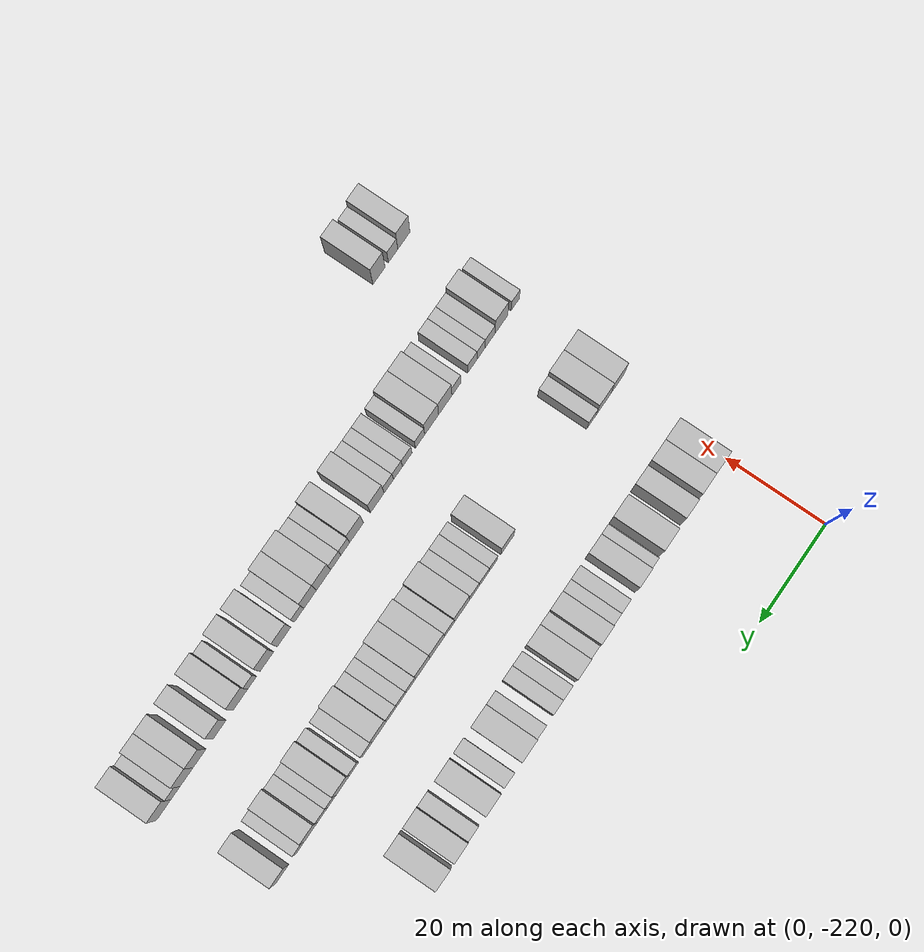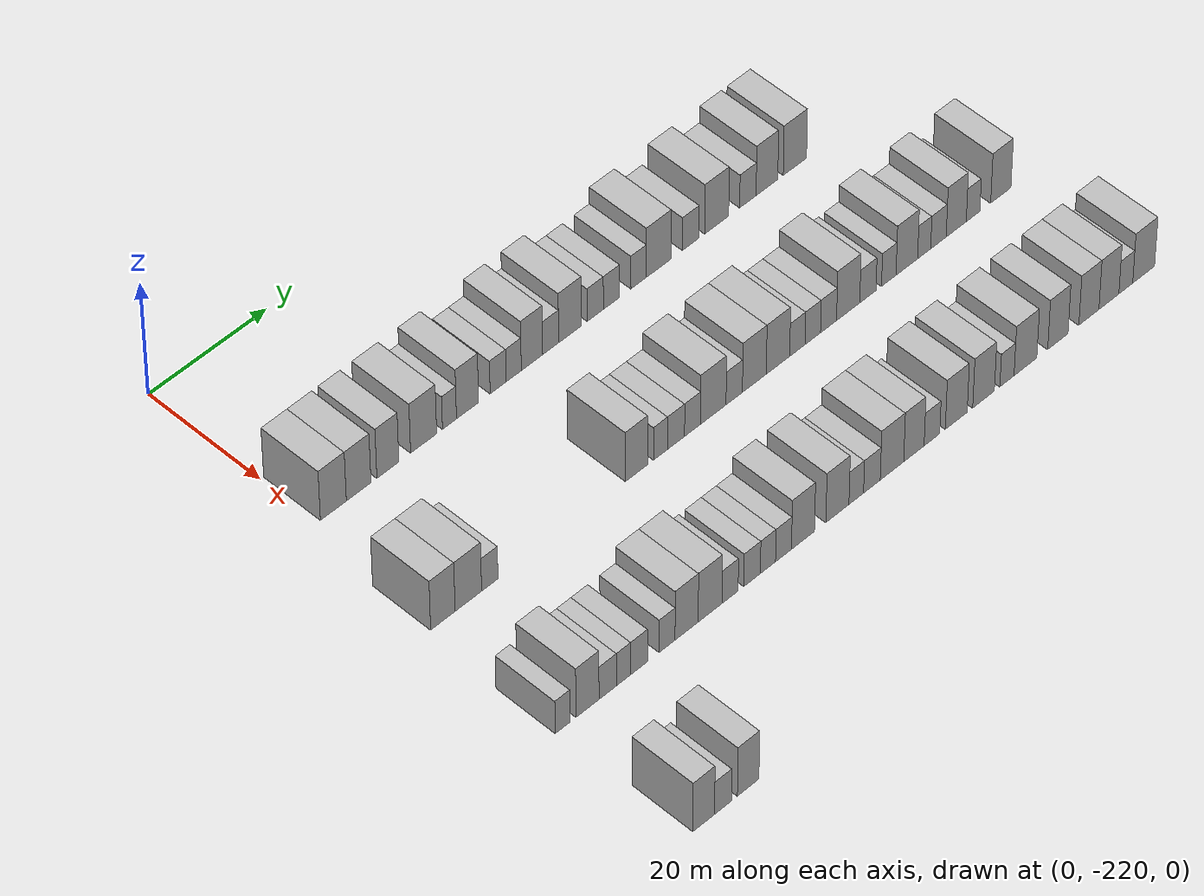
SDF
<sdf version="1.6">
 <world name="default">
  <model name="building_36">
   <static>1</static>
   <pose>25.0000 -217.2489 0 0.000000 0.000000 0.000000</pose>
   <link name="link">
    <pose>0 0 4.50 0 0 0</pose>
    <collision name="collision"><geometry><box><size>10.0000 4.3732 9.0000</size></box></geometry></collision>
    <visual name="visual">
     <cast_shadows>0</cast_shadows>
     <geometry><box><size>10.0000 4.3732 9.0000</size></box></geometry>
     <material>
      <script>
       <uri>model://HANNAS_wall/materials/scripts</uri>
       <uri>model://HANNAS_wall/materials/textures</uri>
       <name>vrc/HANNAS_wall</name>
      </script>
     </material>
    </visual>
   </link>
  </model>
  <model name="building_37">
   <static>1</static>
   <pose>25.0000 -212.9820 0 0.000000 0.000000 0.000000</pose>
   <link name="link">
    <pose>0 0 4.50 0 0 0</pose>
    <collision name="collision"><geometry><box><size>10.0000 4.1607 9.0000</size></box></geometry></collision>
    <visual name="visual">
     <cast_shadows>0</cast_shadows>
     <geometry><box><size>10.0000 4.1607 9.0000</size></box></geometry>
     <material>
      <script>
       <uri>model://HANNAS_wall/materials/scripts</uri>
       <uri>model://HANNAS_wall/materials/textures</uri>
       <name>vrc/HANNAS_wall</name>
      </script>
     </material>
    </visual>
   </link>
  </model>
  <model name="building_38">
   <static>1</static>
   <pose>25.0000 -208.0290 0 0.000000 0.000000 0.000000</pose>
   <link name="link">
    <pose>0 0 4.50 0 0 0</pose>
    <collision name="collision"><geometry><box><size>10.0000 3.7453 9.0000</size></box></geometry></collision>
    <visual name="visual">
     <cast_shadows>0</cast_shadows>
     <geometry><box><size>10.0000 3.7453 9.0000</size></box></geometry>
     <material>
      <script>
       <uri>model://HANNAS_wall/materials/scripts</uri>
       <uri>model://HANNAS_wall/materials/textures</uri>
       <name>vrc/HANNAS_wall</name>
      </script>
     </material>
    </visual>
   </link>
  </model>
  <model name="building_39">
   <static>1</static>
   <pose>25.0000 -201.9263 0 0.000000 0.000000 0.000000</pose>
   <link name="link">
    <pose>0 0 4.50 0 0 0</pose>
    <collision name="collision"><geometry><box><size>10.0000 4.4602 9.0000</size></box></geometry></collision>
    <visual name="visual">
     <cast_shadows>0</cast_shadows>
     <geometry><box><size>10.0000 4.4602 9.0000</size></box></geometry>
     <material>
      <script>
       <uri>model://HANNAS_wall/materials/scripts</uri>
       <uri>model://HANNAS_wall/materials/textures</uri>
       <name>vrc/HANNAS_wall</name>
      </script>
     </material>
    </visual>
   </link>
  </model>
  <model name="building_40">
   <static>1</static>
   <pose>25.0000 -197.4932 0 0.000000 0.000000 0.000000</pose>
   <link name="link">
    <pose>0 0 3.00 0 0 0</pose>
    <collision name="collision"><geometry><box><size>10.0000 2.4059 6.0000</size></box></geometry></collision>
    <visual name="visual">
     <cast_shadows>0</cast_shadows>
     <geometry><box><size>10.0000 2.4059 6.0000</size></box></geometry>
     <material>
      <script>
       <uri>model://HANNAS_wall/materials/scripts</uri>
       <uri>model://HANNAS_wall/materials/textures</uri>
       <name>vrc/HANNAS_wall</name>
      </script>
     </material>
    </visual>
   </link>
  </model>
  <model name="building_41">
   <static>1</static>
   <pose>25.0000 -194.3835 0 0.000000 0.000000 0.000000</pose>
   <link name="link">
    <pose>0 0 4.50 0 0 0</pose>
    <collision name="collision"><geometry><box><size>10.0000 3.8135 9.0000</size></box></geometry></collision>
    <visual name="visual">
     <cast_shadows>0</cast_shadows>
     <geometry><box><size>10.0000 3.8135 9.0000</size></box></geometry>
     <material>
      <script>
       <uri>model://HANNAS_wall/materials/scripts</uri>
       <uri>model://HANNAS_wall/materials/textures</uri>
       <name>vrc/HANNAS_wall</name>
      </script>
     </material>
    </visual>
   </link>
  </model>
  <model name="building_42">
   <static>1</static>
   <pose>25.0000 -189.0873 0 0.000000 0.000000 0.000000</pose>
   <link name="link">
    <pose>0 0 3.00 0 0 0</pose>
    <collision name="collision"><geometry><box><size>10.0000 2.7790 6.0000</size></box></geometry></collision>
    <visual name="visual">
     <cast_shadows>0</cast_shadows>
     <geometry><box><size>10.0000 2.7790 6.0000</size></box></geometry>
     <material>
      <script>
       <uri>model://HANNAS_wall/materials/scripts</uri>
       <uri>model://HANNAS_wall/materials/textures</uri>
       <name>vrc/HANNAS_wall</name>
      </script>
     </material>
    </visual>
   </link>
  </model>
  <model name="building_43">
   <static>1</static>
   <pose>25.0000 -186.3803 0 0.000000 0.000000 0.000000</pose>
   <link name="link">
    <pose>0 0 3.00 0 0 0</pose>
    <collision name="collision"><geometry><box><size>10.0000 2.6351 6.0000</size></box></geometry></collision>
    <visual name="visual">
     <cast_shadows>0</cast_shadows>
     <geometry><box><size>10.0000 2.6351 6.0000</size></box></geometry>
     <material>
      <script>
       <uri>model://HANNAS_wall/materials/scripts</uri>
       <uri>model://HANNAS_wall/materials/textures</uri>
       <name>vrc/HANNAS_wall</name>
      </script>
     </material>
    </visual>
   </link>
  </model>
  <model name="building_44">
   <static>1</static>
   <pose>25.0000 -183.1998 0 0.000000 0.000000 0.000000</pose>
   <link name="link">
    <pose>0 0 4.50 0 0 0</pose>
    <collision name="collision"><geometry><box><size>10.0000 3.7259 9.0000</size></box></geometry></collision>
    <visual name="visual">
     <cast_shadows>0</cast_shadows>
     <geometry><box><size>10.0000 3.7259 9.0000</size></box></geometry>
     <material>
      <script>
       <uri>model://HANNAS_wall/materials/scripts</uri>
       <uri>model://HANNAS_wall/materials/textures</uri>
       <name>vrc/HANNAS_wall</name>
      </script>
     </material>
    </visual>
   </link>
  </model>
  <model name="building_45">
   <static>1</static>
   <pose>25.0000 -179.9310 0 0.000000 0.000000 0.000000</pose>
   <link name="link">
    <pose>0 0 3.00 0 0 0</pose>
    <collision name="collision"><geometry><box><size>10.0000 2.8118 6.0000</size></box></geometry></collision>
    <visual name="visual">
     <cast_shadows>0</cast_shadows>
     <geometry><box><size>10.0000 2.8118 6.0000</size></box></geometry>
     <material>
      <script>
       <uri>model://HANNAS_wall/materials/scripts</uri>
       <uri>model://HANNAS_wall/materials/textures</uri>
       <name>vrc/HANNAS_wall</name>
      </script>
     </material>
    </visual>
   </link>
  </model>
  <model name="building_46">
   <static>1</static>
   <pose>25.0000 -176.5166 0 0.000000 0.000000 0.000000</pose>
   <link name="link">
    <pose>0 0 4.50 0 0 0</pose>
    <collision name="collision"><geometry><box><size>10.0000 4.0171 9.0000</size></box></geometry></collision>
    <visual name="visual">
     <cast_shadows>0</cast_shadows>
     <geometry><box><size>10.0000 4.0171 9.0000</size></box></geometry>
     <material>
      <script>
       <uri>model://HANNAS_wall/materials/scripts</uri>
       <uri>model://HANNAS_wall/materials/textures</uri>
       <name>vrc/HANNAS_wall</name>
      </script>
     </material>
    </visual>
   </link>
  </model>
  <model name="building_47">
   <static>1</static>
   <pose>25.0000 -172.0832 0 0.000000 0.000000 0.000000</pose>
   <link name="link">
    <pose>0 0 3.00 0 0 0</pose>
    <collision name="collision"><geometry><box><size>10.0000 2.8497 6.0000</size></box></geometry></collision>
    <visual name="visual">
     <cast_shadows>0</cast_shadows>
     <geometry><box><size>10.0000 2.8497 6.0000</size></box></geometry>
     <material>
      <script>
       <uri>model://HANNAS_wall/materials/scripts</uri>
       <uri>model://HANNAS_wall/materials/textures</uri>
       <name>vrc/HANNAS_wall</name>
      </script>
     </material>
    </visual>
   </link>
  </model>
  <model name="building_48">
   <static>1</static>
   <pose>25.0000 -169.2199 0 0.000000 0.000000 0.000000</pose>
   <link name="link">
    <pose>0 0 3.00 0 0 0</pose>
    <collision name="collision"><geometry><box><size>10.0000 2.8769 6.0000</size></box></geometry></collision>
    <visual name="visual">
     <cast_shadows>0</cast_shadows>
     <geometry><box><size>10.0000 2.8769 6.0000</size></box></geometry>
     <material>
      <script>
       <uri>model://HANNAS_wall/materials/scripts</uri>
       <uri>model://HANNAS_wall/materials/textures</uri>
       <name>vrc/HANNAS_wall</name>
      </script>
     </material>
    </visual>
   </link>
  </model>
  <model name="building_49">
   <static>1</static>
   <pose>25.0000 -164.4067 0 0.000000 0.000000 0.000000</pose>
   <link name="link">
    <pose>0 0 3.00 0 0 0</pose>
    <collision name="collision"><geometry><box><size>10.0000 2.7496 6.0000</size></box></geometry></collision>
    <visual name="visual">
     <cast_shadows>0</cast_shadows>
     <geometry><box><size>10.0000 2.7496 6.0000</size></box></geometry>
     <material>
      <script>
       <uri>model://HANNAS_wall/materials/scripts</uri>
       <uri>model://HANNAS_wall/materials/textures</uri>
       <name>vrc/HANNAS_wall</name>
      </script>
     </material>
    </visual>
   </link>
  </model>
  <model name="building_50">
   <static>1</static>
   <pose>25.0000 -160.8104 0 0.000000 0.000000 0.000000</pose>
   <link name="link">
    <pose>0 0 4.50 0 0 0</pose>
    <collision name="collision"><geometry><box><size>10.0000 4.4430 9.0000</size></box></geometry></collision>
    <visual name="visual">
     <cast_shadows>0</cast_shadows>
     <geometry><box><size>10.0000 4.4430 9.0000</size></box></geometry>
     <material>
      <script>
       <uri>model://HANNAS_wall/materials/scripts</uri>
       <uri>model://HANNAS_wall/materials/textures</uri>
       <name>vrc/HANNAS_wall</name>
      </script>
     </material>
    </visual>
   </link>
  </model>
  <model name="building_51">
   <static>1</static>
   <pose>25.0000 -155.0964 0 0.000000 0.000000 0.000000</pose>
   <link name="link">
    <pose>0 0 3.00 0 0 0</pose>
    <collision name="collision"><geometry><box><size>10.0000 2.9850 6.0000</size></box></geometry></collision>
    <visual name="visual">
     <cast_shadows>0</cast_shadows>
     <geometry><box><size>10.0000 2.9850 6.0000</size></box></geometry>
     <material>
      <script>
       <uri>model://HANNAS_wall/materials/scripts</uri>
       <uri>model://HANNAS_wall/materials/textures</uri>
       <name>vrc/HANNAS_wall</name>
      </script>
     </material>
    </visual>
   </link>
  </model>
  <model name="building_52">
   <static>1</static>
   <pose>25.0000 -150.4398 0 0.000000 0.000000 0.000000</pose>
   <link name="link">
    <pose>0 0 4.50 0 0 0</pose>
    <collision name="collision"><geometry><box><size>10.0000 4.3282 9.0000</size></box></geometry></collision>
    <visual name="visual">
     <cast_shadows>0</cast_shadows>
     <geometry><box><size>10.0000 4.3282 9.0000</size></box></geometry>
     <material>
      <script>
       <uri>model://HANNAS_wall/materials/scripts</uri>
       <uri>model://HANNAS_wall/materials/textures</uri>
       <name>vrc/HANNAS_wall</name>
      </script>
     </material>
    </visual>
   </link>
  </model>
  <model name="building_53">
   <static>1</static>
   <pose>25.0000 -144.7872 0 0.000000 0.000000 0.000000</pose>
   <link name="link">
    <pose>0 0 3.00 0 0 0</pose>
    <collision name="collision"><geometry><box><size>10.0000 2.9771 6.0000</size></box></geometry></collision>
    <visual name="visual">
     <cast_shadows>0</cast_shadows>
     <geometry><box><size>10.0000 2.9771 6.0000</size></box></geometry>
     <material>
      <script>
       <uri>model://HANNAS_wall/materials/scripts</uri>
       <uri>model://HANNAS_wall/materials/textures</uri>
       <name>vrc/HANNAS_wall</name>
      </script>
     </material>
    </visual>
   </link>
  </model>
  <model name="building_54">
   <static>1</static>
   <pose>25.0000 -141.3297 0 0.000000 0.000000 0.000000</pose>
   <link name="link">
    <pose>0 0 4.50 0 0 0</pose>
    <collision name="collision"><geometry><box><size>10.0000 3.9380 9.0000</size></box></geometry></collision>
    <visual name="visual">
     <cast_shadows>0</cast_shadows>
     <geometry><box><size>10.0000 3.9380 9.0000</size></box></geometry>
     <material>
      <script>
       <uri>model://HANNAS_wall/materials/scripts</uri>
       <uri>model://HANNAS_wall/materials/textures</uri>
       <name>vrc/HANNAS_wall</name>
      </script>
     </material>
    </visual>
   </link>
  </model>
  <model name="building_55">
   <static>1</static>
   <pose>25.0000 -136.2366 0 0.000000 0.000000 0.000000</pose>
   <link name="link">
    <pose>0 0 4.50 0 0 0</pose>
    <collision name="collision"><geometry><box><size>10.0000 4.2481 9.0000</size></box></geometry></collision>
    <visual name="visual">
     <cast_shadows>0</cast_shadows>
     <geometry><box><size>10.0000 4.2481 9.0000</size></box></geometry>
     <material>
      <script>
       <uri>model://HANNAS_wall/materials/scripts</uri>
       <uri>model://HANNAS_wall/materials/textures</uri>
       <name>vrc/HANNAS_wall</name>
      </script>
     </material>
    </visual>
   </link>
  </model>
  <model name="building_215">
   <static>1</static>
   <pose>47.0000 -220.1636 0 0.000000 0.000000 0.000000</pose>
   <link name="link">
    <pose>0 0 4.50 0 0 0</pose>
    <collision name="collision"><geometry><box><size>10.0000 4.1154 9.0000</size></box></geometry></collision>
    <visual name="visual">
     <cast_shadows>0</cast_shadows>
     <geometry><box><size>10.0000 4.1154 9.0000</size></box></geometry>
     <material>
      <script>
       <uri>model://HANNAS_wall/materials/scripts</uri>
       <uri>model://HANNAS_wall/materials/textures</uri>
       <name>vrc/HANNAS_wall</name>
      </script>
     </material>
    </visual>
   </link>
  </model>
  <model name="building_216">
   <static>1</static>
   <pose>47.0000 -215.8716 0 0.000000 0.000000 0.000000</pose>
   <link name="link">
    <pose>0 0 4.50 0 0 0</pose>
    <collision name="collision"><geometry><box><size>10.0000 4.4686 9.0000</size></box></geometry></collision>
    <visual name="visual">
     <cast_shadows>0</cast_shadows>
     <geometry><box><size>10.0000 4.4686 9.0000</size></box></geometry>
     <material>
      <script>
       <uri>model://HANNAS_wall/materials/scripts</uri>
       <uri>model://HANNAS_wall/materials/textures</uri>
       <name>vrc/HANNAS_wall</name>
      </script>
     </material>
    </visual>
   </link>
  </model>
  <model name="building_217">
   <static>1</static>
   <pose>47.0000 -212.2500 0 0.000000 0.000000 0.000000</pose>
   <link name="link">
    <pose>0 0 3.00 0 0 0</pose>
    <collision name="collision"><geometry><box><size>10.0000 2.7747 6.0000</size></box></geometry></collision>
    <visual name="visual">
     <cast_shadows>0</cast_shadows>
     <geometry><box><size>10.0000 2.7747 6.0000</size></box></geometry>
     <material>
      <script>
       <uri>model://HANNAS_wall/materials/scripts</uri>
       <uri>model://HANNAS_wall/materials/textures</uri>
       <name>vrc/HANNAS_wall</name>
      </script>
     </material>
    </visual>
   </link>
  </model>
  <model name="building_218">
   <static>1</static>
   <pose>47.0000 -187.0592 0 0.000000 0.000000 0.000000</pose>
   <link name="link">
    <pose>0 0 4.50 0 0 0</pose>
    <collision name="collision"><geometry><box><size>10.0000 3.8689 9.0000</size></box></geometry></collision>
    <visual name="visual">
     <cast_shadows>0</cast_shadows>
     <geometry><box><size>10.0000 3.8689 9.0000</size></box></geometry>
     <material>
      <script>
       <uri>model://HANNAS_wall/materials/scripts</uri>
       <uri>model://HANNAS_wall/materials/textures</uri>
       <name>vrc/HANNAS_wall</name>
      </script>
     </material>
    </visual>
   </link>
  </model>
  <model name="building_219">
   <static>1</static>
   <pose>47.0000 -182.8898 0 0.000000 0.000000 0.000000</pose>
   <link name="link">
    <pose>0 0 3.00 0 0 0</pose>
    <collision name="collision"><geometry><box><size>10.0000 2.4700 6.0000</size></box></geometry></collision>
    <visual name="visual">
     <cast_shadows>0</cast_shadows>
     <geometry><box><size>10.0000 2.4700 6.0000</size></box></geometry>
     <material>
      <script>
       <uri>model://HANNAS_wall/materials/scripts</uri>
       <uri>model://HANNAS_wall/materials/textures</uri>
       <name>vrc/HANNAS_wall</name>
      </script>
     </material>
    </visual>
   </link>
  </model>
  <model name="building_220">
   <static>1</static>
   <pose>47.0000 -180.1734 0 0.000000 0.000000 0.000000</pose>
   <link name="link">
    <pose>0 0 3.00 0 0 0</pose>
    <collision name="collision"><geometry><box><size>10.0000 2.9627 6.0000</size></box></geometry></collision>
    <visual name="visual">
     <cast_shadows>0</cast_shadows>
     <geometry><box><size>10.0000 2.9627 6.0000</size></box></geometry>
     <material>
      <script>
       <uri>model://HANNAS_wall/materials/scripts</uri>
       <uri>model://HANNAS_wall/materials/textures</uri>
       <name>vrc/HANNAS_wall</name>
      </script>
     </material>
    </visual>
   </link>
  </model>
  <model name="building_221">
   <static>1</static>
   <pose>47.0000 -177.2870 0 0.000000 0.000000 0.000000</pose>
   <link name="link">
    <pose>0 0 3.00 0 0 0</pose>
    <collision name="collision"><geometry><box><size>10.0000 2.8102 6.0000</size></box></geometry></collision>
    <visual name="visual">
     <cast_shadows>0</cast_shadows>
     <geometry><box><size>10.0000 2.8102 6.0000</size></box></geometry>
     <material>
      <script>
       <uri>model://HANNAS_wall/materials/scripts</uri>
       <uri>model://HANNAS_wall/materials/textures</uri>
       <name>vrc/HANNAS_wall</name>
      </script>
     </material>
    </visual>
   </link>
  </model>
  <model name="building_222">
   <static>1</static>
   <pose>47.0000 -173.6373 0 0.000000 0.000000 0.000000</pose>
   <link name="link">
    <pose>0 0 4.50 0 0 0</pose>
    <collision name="collision"><geometry><box><size>10.0000 4.4892 9.0000</size></box></geometry></collision>
    <visual name="visual">
     <cast_shadows>0</cast_shadows>
     <geometry><box><size>10.0000 4.4892 9.0000</size></box></geometry>
     <material>
      <script>
       <uri>model://HANNAS_wall/materials/scripts</uri>
       <uri>model://HANNAS_wall/materials/textures</uri>
       <name>vrc/HANNAS_wall</name>
      </script>
     </material>
    </visual>
   </link>
  </model>
  <model name="building_223">
   <static>1</static>
   <pose>47.0000 -169.9441 0 0.000000 0.000000 0.000000</pose>
   <link name="link">
    <pose>0 0 3.00 0 0 0</pose>
    <collision name="collision"><geometry><box><size>10.0000 2.8972 6.0000</size></box></geometry></collision>
    <visual name="visual">
     <cast_shadows>0</cast_shadows>
     <geometry><box><size>10.0000 2.8972 6.0000</size></box></geometry>
     <material>
      <script>
       <uri>model://HANNAS_wall/materials/scripts</uri>
       <uri>model://HANNAS_wall/materials/textures</uri>
       <name>vrc/HANNAS_wall</name>
      </script>
     </material>
    </visual>
   </link>
  </model>
  <model name="building_224">
   <static>1</static>
   <pose>47.0000 -166.3762 0 0.000000 0.000000 0.000000</pose>
   <link name="link">
    <pose>0 0 4.50 0 0 0</pose>
    <collision name="collision"><geometry><box><size>10.0000 4.2386 9.0000</size></box></geometry></collision>
    <visual name="visual">
     <cast_shadows>0</cast_shadows>
     <geometry><box><size>10.0000 4.2386 9.0000</size></box></geometry>
     <material>
      <script>
       <uri>model://HANNAS_wall/materials/scripts</uri>
       <uri>model://HANNAS_wall/materials/textures</uri>
       <name>vrc/HANNAS_wall</name>
      </script>
     </material>
    </visual>
   </link>
  </model>
  <model name="building_225">
   <static>1</static>
   <pose>47.0000 -162.1729 0 0.000000 0.000000 0.000000</pose>
   <link name="link">
    <pose>0 0 4.50 0 0 0</pose>
    <collision name="collision"><geometry><box><size>10.0000 4.1680 9.0000</size></box></geometry></collision>
    <visual name="visual">
     <cast_shadows>0</cast_shadows>
     <geometry><box><size>10.0000 4.1680 9.0000</size></box></geometry>
     <material>
      <script>
       <uri>model://HANNAS_wall/materials/scripts</uri>
       <uri>model://HANNAS_wall/materials/textures</uri>
       <name>vrc/HANNAS_wall</name>
      </script>
     </material>
    </visual>
   </link>
  </model>
  <model name="building_226">
   <static>1</static>
   <pose>47.0000 -158.7095 0 0.000000 0.000000 0.000000</pose>
   <link name="link">
    <pose>0 0 3.00 0 0 0</pose>
    <collision name="collision"><geometry><box><size>10.0000 2.7588 6.0000</size></box></geometry></collision>
    <visual name="visual">
     <cast_shadows>0</cast_shadows>
     <geometry><box><size>10.0000 2.7588 6.0000</size></box></geometry>
     <material>
      <script>
       <uri>model://HANNAS_wall/materials/scripts</uri>
       <uri>model://HANNAS_wall/materials/textures</uri>
       <name>vrc/HANNAS_wall</name>
      </script>
     </material>
    </visual>
   </link>
  </model>
  <model name="building_227">
   <static>1</static>
   <pose>47.0000 -155.9490 0 0.000000 0.000000 0.000000</pose>
   <link name="link">
    <pose>0 0 3.00 0 0 0</pose>
    <collision name="collision"><geometry><box><size>10.0000 2.7621 6.0000</size></box></geometry></collision>
    <visual name="visual">
     <cast_shadows>0</cast_shadows>
     <geometry><box><size>10.0000 2.7621 6.0000</size></box></geometry>
     <material>
      <script>
       <uri>model://HANNAS_wall/materials/scripts</uri>
       <uri>model://HANNAS_wall/materials/textures</uri>
       <name>vrc/HANNAS_wall</name>
      </script>
     </material>
    </visual>
   </link>
  </model>
  <model name="building_228">
   <static>1</static>
   <pose>47.0000 -153.1250 0 0.000000 0.000000 0.000000</pose>
   <link name="link">
    <pose>0 0 3.00 0 0 0</pose>
    <collision name="collision"><geometry><box><size>10.0000 2.8860 6.0000</size></box></geometry></collision>
    <visual name="visual">
     <cast_shadows>0</cast_shadows>
     <geometry><box><size>10.0000 2.8860 6.0000</size></box></geometry>
     <material>
      <script>
       <uri>model://HANNAS_wall/materials/scripts</uri>
       <uri>model://HANNAS_wall/materials/textures</uri>
       <name>vrc/HANNAS_wall</name>
      </script>
     </material>
    </visual>
   </link>
  </model>
  <model name="building_229">
   <static>1</static>
   <pose>47.0000 -149.5881 0 0.000000 0.000000 0.000000</pose>
   <link name="link">
    <pose>0 0 4.50 0 0 0</pose>
    <collision name="collision"><geometry><box><size>10.0000 4.1878 9.0000</size></box></geometry></collision>
    <visual name="visual">
     <cast_shadows>0</cast_shadows>
     <geometry><box><size>10.0000 4.1878 9.0000</size></box></geometry>
     <material>
      <script>
       <uri>model://HANNAS_wall/materials/scripts</uri>
       <uri>model://HANNAS_wall/materials/textures</uri>
       <name>vrc/HANNAS_wall</name>
      </script>
     </material>
    </visual>
   </link>
  </model>
  <model name="building_230">
   <static>1</static>
   <pose>47.0000 -146.0191 0 0.000000 0.000000 0.000000</pose>
   <link name="link">
    <pose>0 0 3.00 0 0 0</pose>
    <collision name="collision"><geometry><box><size>10.0000 2.9503 6.0000</size></box></geometry></collision>
    <visual name="visual">
     <cast_shadows>0</cast_shadows>
     <geometry><box><size>10.0000 2.9503 6.0000</size></box></geometry>
     <material>
      <script>
       <uri>model://HANNAS_wall/materials/scripts</uri>
       <uri>model://HANNAS_wall/materials/textures</uri>
       <name>vrc/HANNAS_wall</name>
      </script>
     </material>
    </visual>
   </link>
  </model>
  <model name="building_231">
   <static>1</static>
   <pose>47.0000 -142.2250 0 0.000000 0.000000 0.000000</pose>
   <link name="link">
    <pose>0 0 3.00 0 0 0</pose>
    <collision name="collision"><geometry><box><size>10.0000 2.6378 6.0000</size></box></geometry></collision>
    <visual name="visual">
     <cast_shadows>0</cast_shadows>
     <geometry><box><size>10.0000 2.6378 6.0000</size></box></geometry>
     <material>
      <script>
       <uri>model://HANNAS_wall/materials/scripts</uri>
       <uri>model://HANNAS_wall/materials/textures</uri>
       <name>vrc/HANNAS_wall</name>
      </script>
     </material>
    </visual>
   </link>
  </model>
  <model name="building_232">
   <static>1</static>
   <pose>47.0000 -138.9369 0 0.000000 0.000000 0.000000</pose>
   <link name="link">
    <pose>0 0 4.50 0 0 0</pose>
    <collision name="collision"><geometry><box><size>10.0000 3.9385 9.0000</size></box></geometry></collision>
    <visual name="visual">
     <cast_shadows>0</cast_shadows>
     <geometry><box><size>10.0000 3.9385 9.0000</size></box></geometry>
     <material>
      <script>
       <uri>model://HANNAS_wall/materials/scripts</uri>
       <uri>model://HANNAS_wall/materials/textures</uri>
       <name>vrc/HANNAS_wall</name>
      </script>
     </material>
    </visual>
   </link>
  </model>
  <model name="building_233">
   <static>1</static>
   <pose>47.0000 -135.7668 0 0.000000 0.000000 0.000000</pose>
   <link name="link">
    <pose>0 0 3.00 0 0 0</pose>
    <collision name="collision"><geometry><box><size>10.0000 2.4017 6.0000</size></box></geometry></collision>
    <visual name="visual">
     <cast_shadows>0</cast_shadows>
     <geometry><box><size>10.0000 2.4017 6.0000</size></box></geometry>
     <material>
      <script>
       <uri>model://HANNAS_wall/materials/scripts</uri>
       <uri>model://HANNAS_wall/materials/textures</uri>
       <name>vrc/HANNAS_wall</name>
      </script>
     </material>
    </visual>
   </link>
  </model>
  <model name="building_234">
   <static>1</static>
   <pose>47.0000 -133.1424 0 0.000000 0.000000 0.000000</pose>
   <link name="link">
    <pose>0 0 3.00 0 0 0</pose>
    <collision name="collision"><geometry><box><size>10.0000 2.8470 6.0000</size></box></geometry></collision>
    <visual name="visual">
     <cast_shadows>0</cast_shadows>
     <geometry><box><size>10.0000 2.8470 6.0000</size></box></geometry>
     <material>
      <script>
       <uri>model://HANNAS_wall/materials/scripts</uri>
       <uri>model://HANNAS_wall/materials/textures</uri>
       <name>vrc/HANNAS_wall</name>
      </script>
     </material>
    </visual>
   </link>
  </model>
  <model name="building_235">
   <static>1</static>
   <pose>47.0000 -129.8672 0 0.000000 0.000000 0.000000</pose>
   <link name="link">
    <pose>0 0 4.50 0 0 0</pose>
    <collision name="collision"><geometry><box><size>10.0000 3.7036 9.0000</size></box></geometry></collision>
    <visual name="visual">
     <cast_shadows>0</cast_shadows>
     <geometry><box><size>10.0000 3.7036 9.0000</size></box></geometry>
     <material>
      <script>
       <uri>model://HANNAS_wall/materials/scripts</uri>
       <uri>model://HANNAS_wall/materials/textures</uri>
       <name>vrc/HANNAS_wall</name>
      </script>
     </material>
    </visual>
   </link>
  </model>
  <model name="building_236">
   <static>1</static>
   <pose>47.0000 -126.7582 0 0.000000 0.000000 0.000000</pose>
   <link name="link">
    <pose>0 0 3.00 0 0 0</pose>
    <collision name="collision"><geometry><box><size>10.0000 2.5143 6.0000</size></box></geometry></collision>
    <visual name="visual">
     <cast_shadows>0</cast_shadows>
     <geometry><box><size>10.0000 2.5143 6.0000</size></box></geometry>
     <material>
      <script>
       <uri>model://HANNAS_wall/materials/scripts</uri>
       <uri>model://HANNAS_wall/materials/textures</uri>
       <name>vrc/HANNAS_wall</name>
      </script>
     </material>
    </visual>
   </link>
  </model>
  <model name="building_237">
   <static>1</static>
   <pose>47.0000 -121.6218 0 0.000000 0.000000 0.000000</pose>
   <link name="link">
    <pose>0 0 4.50 0 0 0</pose>
    <collision name="collision"><geometry><box><size>10.0000 3.7586 9.0000</size></box></geometry></collision>
    <visual name="visual">
     <cast_shadows>0</cast_shadows>
     <geometry><box><size>10.0000 3.7586 9.0000</size></box></geometry>
     <material>
      <script>
       <uri>model://HANNAS_wall/materials/scripts</uri>
       <uri>model://HANNAS_wall/materials/textures</uri>
       <name>vrc/HANNAS_wall</name>
      </script>
     </material>
    </visual>
   </link>
  </model>
  <model name="building_399">
   <static>1</static>
   <pose>69.0000 -221.8254 0 0.000000 0.000000 0.000000</pose>
   <link name="link">
    <pose>0 0 3.00 0 0 0</pose>
    <collision name="collision"><geometry><box><size>10.0000 2.4889 6.0000</size></box></geometry></collision>
    <visual name="visual">
     <cast_shadows>0</cast_shadows>
     <geometry><box><size>10.0000 2.4889 6.0000</size></box></geometry>
     <material>
      <script>
       <uri>model://HANNAS_wall/materials/scripts</uri>
       <uri>model://HANNAS_wall/materials/textures</uri>
       <name>vrc/HANNAS_wall</name>
      </script>
     </material>
    </visual>
   </link>
  </model>
  <model name="building_400">
   <static>1</static>
   <pose>69.0000 -217.6435 0 0.000000 0.000000 0.000000</pose>
   <link name="link">
    <pose>0 0 4.50 0 0 0</pose>
    <collision name="collision"><geometry><box><size>10.0000 3.8749 9.0000</size></box></geometry></collision>
    <visual name="visual">
     <cast_shadows>0</cast_shadows>
     <geometry><box><size>10.0000 3.8749 9.0000</size></box></geometry>
     <material>
      <script>
       <uri>model://HANNAS_wall/materials/scripts</uri>
       <uri>model://HANNAS_wall/materials/textures</uri>
       <name>vrc/HANNAS_wall</name>
      </script>
     </material>
    </visual>
   </link>
  </model>
  <model name="building_401">
   <static>1</static>
   <pose>69.0000 -214.2305 0 0.000000 0.000000 0.000000</pose>
   <link name="link">
    <pose>0 0 3.00 0 0 0</pose>
    <collision name="collision"><geometry><box><size>10.0000 2.9513 6.0000</size></box></geometry></collision>
    <visual name="visual">
     <cast_shadows>0</cast_shadows>
     <geometry><box><size>10.0000 2.9513 6.0000</size></box></geometry>
     <material>
      <script>
       <uri>model://HANNAS_wall/materials/scripts</uri>
       <uri>model://HANNAS_wall/materials/textures</uri>
       <name>vrc/HANNAS_wall</name>
      </script>
     </material>
    </visual>
   </link>
  </model>
  <model name="building_402">
   <static>1</static>
   <pose>69.0000 -211.5485 0 0.000000 0.000000 0.000000</pose>
   <link name="link">
    <pose>0 0 3.00 0 0 0</pose>
    <collision name="collision"><geometry><box><size>10.0000 2.4127 6.0000</size></box></geometry></collision>
    <visual name="visual">
     <cast_shadows>0</cast_shadows>
     <geometry><box><size>10.0000 2.4127 6.0000</size></box></geometry>
     <material>
      <script>
       <uri>model://HANNAS_wall/materials/scripts</uri>
       <uri>model://HANNAS_wall/materials/textures</uri>
       <name>vrc/HANNAS_wall</name>
      </script>
     </material>
    </visual>
   </link>
  </model>
  <model name="building_403">
   <static>1</static>
   <pose>69.0000 -208.9193 0 0.000000 0.000000 0.000000</pose>
   <link name="link">
    <pose>0 0 3.00 0 0 0</pose>
    <collision name="collision"><geometry><box><size>10.0000 2.8455 6.0000</size></box></geometry></collision>
    <visual name="visual">
     <cast_shadows>0</cast_shadows>
     <geometry><box><size>10.0000 2.8455 6.0000</size></box></geometry>
     <material>
      <script>
       <uri>model://HANNAS_wall/materials/scripts</uri>
       <uri>model://HANNAS_wall/materials/textures</uri>
       <name>vrc/HANNAS_wall</name>
      </script>
     </material>
    </visual>
   </link>
  </model>
  <model name="building_404">
   <static>1</static>
   <pose>69.0000 -204.1469 0 0.000000 0.000000 0.000000</pose>
   <link name="link">
    <pose>0 0 3.00 0 0 0</pose>
    <collision name="collision"><geometry><box><size>10.0000 2.6992 6.0000</size></box></geometry></collision>
    <visual name="visual">
     <cast_shadows>0</cast_shadows>
     <geometry><box><size>10.0000 2.6992 6.0000</size></box></geometry>
     <material>
      <script>
       <uri>model://HANNAS_wall/materials/scripts</uri>
       <uri>model://HANNAS_wall/materials/textures</uri>
       <name>vrc/HANNAS_wall</name>
      </script>
     </material>
    </visual>
   </link>
  </model>
  <model name="building_405">
   <static>1</static>
   <pose>69.0000 -200.8086 0 0.000000 0.000000 0.000000</pose>
   <link name="link">
    <pose>0 0 4.50 0 0 0</pose>
    <collision name="collision"><geometry><box><size>10.0000 3.9775 9.0000</size></box></geometry></collision>
    <visual name="visual">
     <cast_shadows>0</cast_shadows>
     <geometry><box><size>10.0000 3.9775 9.0000</size></box></geometry>
     <material>
      <script>
       <uri>model://HANNAS_wall/materials/scripts</uri>
       <uri>model://HANNAS_wall/materials/textures</uri>
       <name>vrc/HANNAS_wall</name>
      </script>
     </material>
    </visual>
   </link>
  </model>
  <model name="building_406">
   <static>1</static>
   <pose>69.0000 -196.7591 0 0.000000 0.000000 0.000000</pose>
   <link name="link">
    <pose>0 0 4.50 0 0 0</pose>
    <collision name="collision"><geometry><box><size>10.0000 4.1215 9.0000</size></box></geometry></collision>
    <visual name="visual">
     <cast_shadows>0</cast_shadows>
     <geometry><box><size>10.0000 4.1215 9.0000</size></box></geometry>
     <material>
      <script>
       <uri>model://HANNAS_wall/materials/scripts</uri>
       <uri>model://HANNAS_wall/materials/textures</uri>
       <name>vrc/HANNAS_wall</name>
      </script>
     </material>
    </visual>
   </link>
  </model>
  <model name="building_407">
   <static>1</static>
   <pose>69.0000 -193.3235 0 0.000000 0.000000 0.000000</pose>
   <link name="link">
    <pose>0 0 3.00 0 0 0</pose>
    <collision name="collision"><geometry><box><size>10.0000 2.7496 6.0000</size></box></geometry></collision>
    <visual name="visual">
     <cast_shadows>0</cast_shadows>
     <geometry><box><size>10.0000 2.7496 6.0000</size></box></geometry>
     <material>
      <script>
       <uri>model://HANNAS_wall/materials/scripts</uri>
       <uri>model://HANNAS_wall/materials/textures</uri>
       <name>vrc/HANNAS_wall</name>
      </script>
     </material>
    </visual>
   </link>
  </model>
  <model name="building_408">
   <static>1</static>
   <pose>69.0000 -189.5194 0 0.000000 0.000000 0.000000</pose>
   <link name="link">
    <pose>0 0 3.00 0 0 0</pose>
    <collision name="collision"><geometry><box><size>10.0000 2.8585 6.0000</size></box></geometry></collision>
    <visual name="visual">
     <cast_shadows>0</cast_shadows>
     <geometry><box><size>10.0000 2.8585 6.0000</size></box></geometry>
     <material>
      <script>
       <uri>model://HANNAS_wall/materials/scripts</uri>
       <uri>model://HANNAS_wall/materials/textures</uri>
       <name>vrc/HANNAS_wall</name>
      </script>
     </material>
    </visual>
   </link>
  </model>
  <model name="building_409">
   <static>1</static>
   <pose>69.0000 -186.7771 0 0.000000 0.000000 0.000000</pose>
   <link name="link">
    <pose>0 0 3.00 0 0 0</pose>
    <collision name="collision"><geometry><box><size>10.0000 2.6262 6.0000</size></box></geometry></collision>
    <visual name="visual">
     <cast_shadows>0</cast_shadows>
     <geometry><box><size>10.0000 2.6262 6.0000</size></box></geometry>
     <material>
      <script>
       <uri>model://HANNAS_wall/materials/scripts</uri>
       <uri>model://HANNAS_wall/materials/textures</uri>
       <name>vrc/HANNAS_wall</name>
      </script>
     </material>
    </visual>
   </link>
  </model>
  <model name="building_410">
   <static>1</static>
   <pose>69.0000 -184.0694 0 0.000000 0.000000 0.000000</pose>
   <link name="link">
    <pose>0 0 3.00 0 0 0</pose>
    <collision name="collision"><geometry><box><size>10.0000 2.7893 6.0000</size></box></geometry></collision>
    <visual name="visual">
     <cast_shadows>0</cast_shadows>
     <geometry><box><size>10.0000 2.7893 6.0000</size></box></geometry>
     <material>
      <script>
       <uri>model://HANNAS_wall/materials/scripts</uri>
       <uri>model://HANNAS_wall/materials/textures</uri>
       <name>vrc/HANNAS_wall</name>
      </script>
     </material>
    </visual>
   </link>
  </model>
  <model name="building_411">
   <static>1</static>
   <pose>69.0000 -180.6640 0 0.000000 0.000000 0.000000</pose>
   <link name="link">
    <pose>0 0 4.50 0 0 0</pose>
    <collision name="collision"><geometry><box><size>10.0000 4.0214 9.0000</size></box></geometry></collision>
    <visual name="visual">
     <cast_shadows>0</cast_shadows>
     <geometry><box><size>10.0000 4.0214 9.0000</size></box></geometry>
     <material>
      <script>
       <uri>model://HANNAS_wall/materials/scripts</uri>
       <uri>model://HANNAS_wall/materials/textures</uri>
       <name>vrc/HANNAS_wall</name>
      </script>
     </material>
    </visual>
   </link>
  </model>
  <model name="building_412">
   <static>1</static>
   <pose>69.0000 -174.6191 0 0.000000 0.000000 0.000000</pose>
   <link name="link">
    <pose>0 0 4.50 0 0 0</pose>
    <collision name="collision"><geometry><box><size>10.0000 4.0683 9.0000</size></box></geometry></collision>
    <visual name="visual">
     <cast_shadows>0</cast_shadows>
     <geometry><box><size>10.0000 4.0683 9.0000</size></box></geometry>
     <material>
      <script>
       <uri>model://HANNAS_wall/materials/scripts</uri>
       <uri>model://HANNAS_wall/materials/textures</uri>
       <name>vrc/HANNAS_wall</name>
      </script>
     </material>
    </visual>
   </link>
  </model>
  <model name="building_413">
   <static>1</static>
   <pose>69.0000 -171.2927 0 0.000000 0.000000 0.000000</pose>
   <link name="link">
    <pose>0 0 3.00 0 0 0</pose>
    <collision name="collision"><geometry><box><size>10.0000 2.5846 6.0000</size></box></geometry></collision>
    <visual name="visual">
     <cast_shadows>0</cast_shadows>
     <geometry><box><size>10.0000 2.5846 6.0000</size></box></geometry>
     <material>
      <script>
       <uri>model://HANNAS_wall/materials/scripts</uri>
       <uri>model://HANNAS_wall/materials/textures</uri>
       <name>vrc/HANNAS_wall</name>
      </script>
     </material>
    </visual>
   </link>
  </model>
  <model name="building_414">
   <static>1</static>
   <pose>69.0000 -168.5231 0 0.000000 0.000000 0.000000</pose>
   <link name="link">
    <pose>0 0 3.00 0 0 0</pose>
    <collision name="collision"><geometry><box><size>10.0000 2.9545 6.0000</size></box></geometry></collision>
    <visual name="visual">
     <cast_shadows>0</cast_shadows>
     <geometry><box><size>10.0000 2.9545 6.0000</size></box></geometry>
     <material>
      <script>
       <uri>model://HANNAS_wall/materials/scripts</uri>
       <uri>model://HANNAS_wall/materials/textures</uri>
       <name>vrc/HANNAS_wall</name>
      </script>
     </material>
    </visual>
   </link>
  </model>
  <model name="building_415">
   <static>1</static>
   <pose>69.0000 -164.9601 0 0.000000 0.000000 0.000000</pose>
   <link name="link">
    <pose>0 0 4.50 0 0 0</pose>
    <collision name="collision"><geometry><box><size>10.0000 4.1716 9.0000</size></box></geometry></collision>
    <visual name="visual">
     <cast_shadows>0</cast_shadows>
     <geometry><box><size>10.0000 4.1716 9.0000</size></box></geometry>
     <material>
      <script>
       <uri>model://HANNAS_wall/materials/scripts</uri>
       <uri>model://HANNAS_wall/materials/textures</uri>
       <name>vrc/HANNAS_wall</name>
      </script>
     </material>
    </visual>
   </link>
  </model>
  <model name="building_416">
   <static>1</static>
   <pose>69.0000 -161.0488 0 0.000000 0.000000 0.000000</pose>
   <link name="link">
    <pose>0 0 4.50 0 0 0</pose>
    <collision name="collision"><geometry><box><size>10.0000 3.6509 9.0000</size></box></geometry></collision>
    <visual name="visual">
     <cast_shadows>0</cast_shadows>
     <geometry><box><size>10.0000 3.6509 9.0000</size></box></geometry>
     <material>
      <script>
       <uri>model://HANNAS_wall/materials/scripts</uri>
       <uri>model://HANNAS_wall/materials/textures</uri>
       <name>vrc/HANNAS_wall</name>
      </script>
     </material>
    </visual>
   </link>
  </model>
  <model name="building_417">
   <static>1</static>
   <pose>69.0000 -157.8221 0 0.000000 0.000000 0.000000</pose>
   <link name="link">
    <pose>0 0 3.00 0 0 0</pose>
    <collision name="collision"><geometry><box><size>10.0000 2.8025 6.0000</size></box></geometry></collision>
    <visual name="visual">
     <cast_shadows>0</cast_shadows>
     <geometry><box><size>10.0000 2.8025 6.0000</size></box></geometry>
     <material>
      <script>
       <uri>model://HANNAS_wall/materials/scripts</uri>
       <uri>model://HANNAS_wall/materials/textures</uri>
       <name>vrc/HANNAS_wall</name>
      </script>
     </material>
    </visual>
   </link>
  </model>
  <model name="building_418">
   <static>1</static>
   <pose>69.0000 -153.4515 0 0.000000 0.000000 0.000000</pose>
   <link name="link">
    <pose>0 0 4.50 0 0 0</pose>
    <collision name="collision"><geometry><box><size>10.0000 3.9387 9.0000</size></box></geometry></collision>
    <visual name="visual">
     <cast_shadows>0</cast_shadows>
     <geometry><box><size>10.0000 3.9387 9.0000</size></box></geometry>
     <material>
      <script>
       <uri>model://HANNAS_wall/materials/scripts</uri>
       <uri>model://HANNAS_wall/materials/textures</uri>
       <name>vrc/HANNAS_wall</name>
      </script>
     </material>
    </visual>
   </link>
  </model>
  <model name="building_419">
   <static>1</static>
   <pose>69.0000 -148.5227 0 0.000000 0.000000 0.000000</pose>
   <link name="link">
    <pose>0 0 4.50 0 0 0</pose>
    <collision name="collision"><geometry><box><size>10.0000 3.9189 9.0000</size></box></geometry></collision>
    <visual name="visual">
     <cast_shadows>0</cast_shadows>
     <geometry><box><size>10.0000 3.9189 9.0000</size></box></geometry>
     <material>
      <script>
       <uri>model://HANNAS_wall/materials/scripts</uri>
       <uri>model://HANNAS_wall/materials/textures</uri>
       <name>vrc/HANNAS_wall</name>
      </script>
     </material>
    </visual>
   </link>
  </model>
  <model name="building_420">
   <static>1</static>
   <pose>69.0000 -144.2747 0 0.000000 0.000000 0.000000</pose>
   <link name="link">
    <pose>0 0 3.00 0 0 0</pose>
    <collision name="collision"><geometry><box><size>10.0000 2.5771 6.0000</size></box></geometry></collision>
    <visual name="visual">
     <cast_shadows>0</cast_shadows>
     <geometry><box><size>10.0000 2.5771 6.0000</size></box></geometry>
     <material>
      <script>
       <uri>model://HANNAS_wall/materials/scripts</uri>
       <uri>model://HANNAS_wall/materials/textures</uri>
       <name>vrc/HANNAS_wall</name>
      </script>
     </material>
    </visual>
   </link>
  </model>
  <model name="building_421">
   <static>1</static>
   <pose>69.0000 -140.9117 0 0.000000 0.000000 0.000000</pose>
   <link name="link">
    <pose>0 0 4.50 0 0 0</pose>
    <collision name="collision"><geometry><box><size>10.0000 4.1488 9.0000</size></box></geometry></collision>
    <visual name="visual">
     <cast_shadows>0</cast_shadows>
     <geometry><box><size>10.0000 4.1488 9.0000</size></box></geometry>
     <material>
      <script>
       <uri>model://HANNAS_wall/materials/scripts</uri>
       <uri>model://HANNAS_wall/materials/textures</uri>
       <name>vrc/HANNAS_wall</name>
      </script>
     </material>
    </visual>
   </link>
  </model>
  <model name="building_422">
   <static>1</static>
   <pose>69.0000 -134.9769 0 0.000000 0.000000 0.000000</pose>
   <link name="link">
    <pose>0 0 4.50 0 0 0</pose>
    <collision name="collision"><geometry><box><size>10.0000 3.7207 9.0000</size></box></geometry></collision>
    <visual name="visual">
     <cast_shadows>0</cast_shadows>
     <geometry><box><size>10.0000 3.7207 9.0000</size></box></geometry>
     <material>
      <script>
       <uri>model://HANNAS_wall/materials/scripts</uri>
       <uri>model://HANNAS_wall/materials/textures</uri>
       <name>vrc/HANNAS_wall</name>
      </script>
     </material>
    </visual>
   </link>
  </model>
  <model name="building_423">
   <static>1</static>
   <pose>69.0000 -129.2672 0 0.000000 0.000000 0.000000</pose>
   <link name="link">
    <pose>0 0 4.50 0 0 0</pose>
    <collision name="collision"><geometry><box><size>10.0000 3.6987 9.0000</size></box></geometry></collision>
    <visual name="visual">
     <cast_shadows>0</cast_shadows>
     <geometry><box><size>10.0000 3.6987 9.0000</size></box></geometry>
     <material>
      <script>
       <uri>model://HANNAS_wall/materials/scripts</uri>
       <uri>model://HANNAS_wall/materials/textures</uri>
       <name>vrc/HANNAS_wall</name>
      </script>
     </material>
    </visual>
   </link>
  </model>
  <model name="building_424">
   <static>1</static>
   <pose>69.0000 -125.5692 0 0.000000 0.000000 0.000000</pose>
   <link name="link">
    <pose>0 0 4.50 0 0 0</pose>
    <collision name="collision"><geometry><box><size>10.0000 3.6973 9.0000</size></box></geometry></collision>
    <visual name="visual">
     <cast_shadows>0</cast_shadows>
     <geometry><box><size>10.0000 3.6973 9.0000</size></box></geometry>
     <material>
      <script>
       <uri>model://HANNAS_wall/materials/scripts</uri>
       <uri>model://HANNAS_wall/materials/textures</uri>
       <name>vrc/HANNAS_wall</name>
      </script>
     </material>
    </visual>
   </link>
  </model>
  <model name="building_425">
   <static>1</static>
   <pose>69.0000 -122.4369 0 0.000000 0.000000 0.000000</pose>
   <link name="link">
    <pose>0 0 3.00 0 0 0</pose>
    <collision name="collision"><geometry><box><size>10.0000 2.5673 6.0000</size></box></geometry></collision>
    <visual name="visual">
     <cast_shadows>0</cast_shadows>
     <geometry><box><size>10.0000 2.5673 6.0000</size></box></geometry>
     <material>
      <script>
       <uri>model://HANNAS_wall/materials/scripts</uri>
       <uri>model://HANNAS_wall/materials/textures</uri>
       <name>vrc/HANNAS_wall</name>
      </script>
     </material>
    </visual>
   </link>
  </model>
  <model name="building_426">
   <static>1</static>
   <pose>69.0000 -119.1141 0 0.000000 0.000000 0.000000</pose>
   <link name="link">
    <pose>0 0 4.50 0 0 0</pose>
    <collision name="collision"><geometry><box><size>10.0000 4.0782 9.0000</size></box></geometry></collision>
    <visual name="visual">
     <cast_shadows>0</cast_shadows>
     <geometry><box><size>10.0000 4.0782 9.0000</size></box></geometry>
     <material>
      <script>
       <uri>model://HANNAS_wall/materials/scripts</uri>
       <uri>model://HANNAS_wall/materials/textures</uri>
       <name>vrc/HANNAS_wall</name>
      </script>
     </material>
    </visual>
   </link>
  </model>
  <model name="building_580">
   <static>1</static>
   <pose>91.0000 -220.4215 0 0.000000 0.000000 0.000000</pose>
   <link name="link">
    <pose>0 0 4.50 0 0 0</pose>
    <collision name="collision"><geometry><box><size>10.0000 3.6356 9.0000</size></box></geometry></collision>
    <visual name="visual">
     <cast_shadows>0</cast_shadows>
     <geometry><box><size>10.0000 3.6356 9.0000</size></box></geometry>
     <material>
      <script>
       <uri>model://HANNAS_wall/materials/scripts</uri>
       <uri>model://HANNAS_wall/materials/textures</uri>
       <name>vrc/HANNAS_wall</name>
      </script>
     </material>
    </visual>
   </link>
  </model>
  <model name="building_581">
   <static>1</static>
   <pose>91.0000 -217.1845 0 0.000000 0.000000 0.000000</pose>
   <link name="link">
    <pose>0 0 3.00 0 0 0</pose>
    <collision name="collision"><geometry><box><size>10.0000 2.8384 6.0000</size></box></geometry></collision>
    <visual name="visual">
     <cast_shadows>0</cast_shadows>
     <geometry><box><size>10.0000 2.8384 6.0000</size></box></geometry>
     <material>
      <script>
       <uri>model://HANNAS_wall/materials/scripts</uri>
       <uri>model://HANNAS_wall/materials/textures</uri>
       <name>vrc/HANNAS_wall</name>
      </script>
     </material>
    </visual>
   </link>
  </model>
  <model name="building_582">
   <static>1</static>
   <pose>91.0000 -212.9459 0 0.000000 0.000000 0.000000</pose>
   <link name="link">
    <pose>0 0 4.50 0 0 0</pose>
    <collision name="collision"><geometry><box><size>10.0000 3.6386 9.0000</size></box></geometry></collision>
    <visual name="visual">
     <cast_shadows>0</cast_shadows>
     <geometry><box><size>10.0000 3.6386 9.0000</size></box></geometry>
     <material>
      <script>
       <uri>model://HANNAS_wall/materials/scripts</uri>
       <uri>model://HANNAS_wall/materials/textures</uri>
       <name>vrc/HANNAS_wall</name>
      </script>
     </material>
    </visual>
   </link>
  </model>
 </world>
</sdf>
